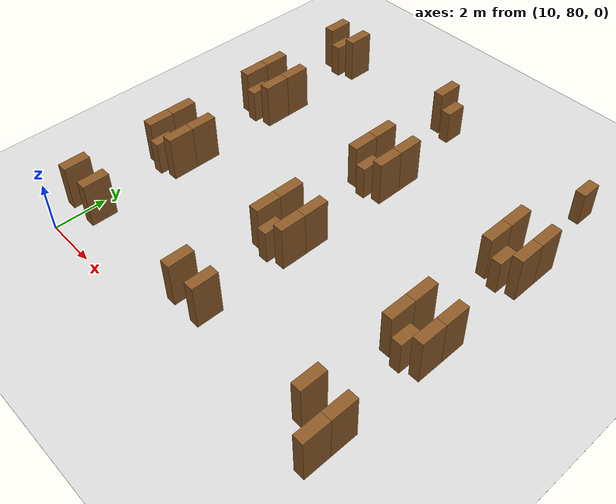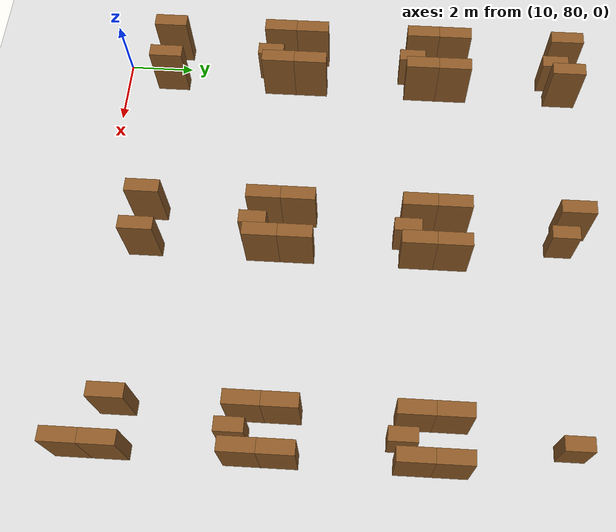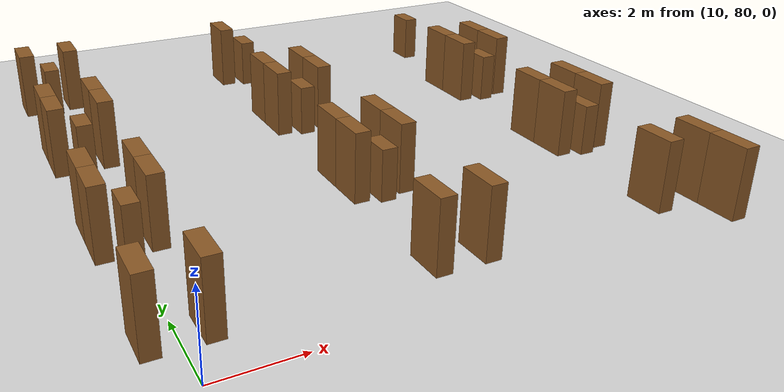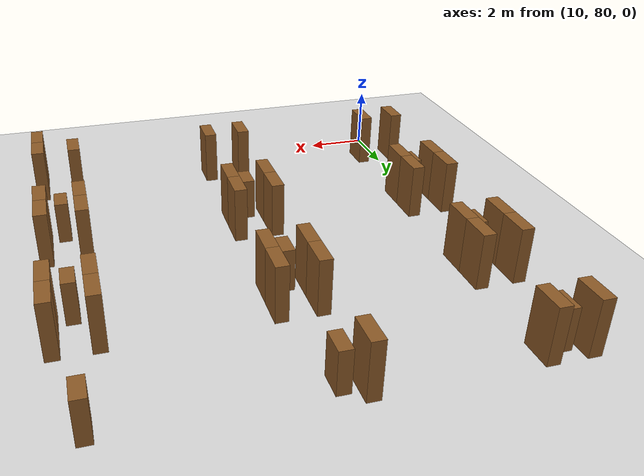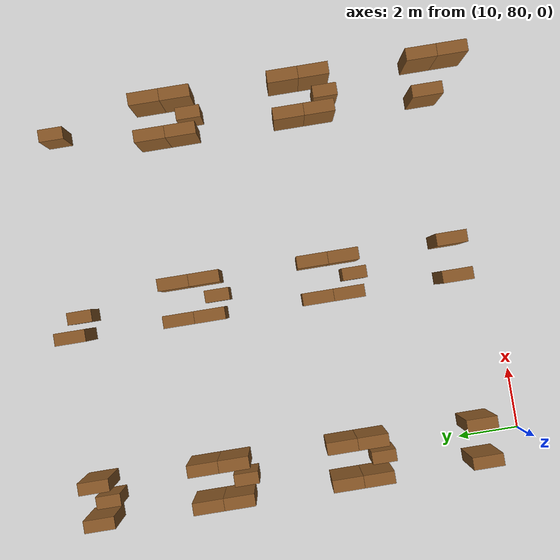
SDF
<sdf version="1.9">
 <world name="realistic_warehouse_150x200m">
  <model name="ground_plane">
   <static>true</static>
   <pose>68.5 102.0 0 0 0 0</pose>
   <link name="ground_link">
    <visual name="ground_visual">
     <geometry><box><size>127.0 194.0 0.01</size></box></geometry>
     <material><ambient>0.85 0.85 0.85 1.0</ambient><diffuse>0.85 0.85 0.85 1.0</diffuse></material>
    </visual>
    <collision name="ground_visual_collision">
     <geometry><box><size>127.0 194.0 0.01</size></box></geometry>
    </collision>
    <collision name="ground_collision">
     <geometry><plane><normal>0 0 1</normal><size>127.0 194.0</size></plane></geometry>
    </collision>
   </link>
  </model>
  <model name="rack_Zone_G_A0_S4_1019">
   <static>true</static>
   <pose>9.4 81.5 0.9 0 0 0</pose>
   <link name="rack_Zone_G_A0_S4_1019_link">
    <visual name="rack_Zone_G_A0_S4_1019_vis">
     <geometry><box><size>0.4 1.0 1.8</size></box></geometry>
     <material><ambient>0.55 0.35 0.15 1.0</ambient><diffuse>0.55 0.35 0.15 1.0</diffuse></material>
    </visual>
    <collision name="rack_Zone_G_A0_S4_1019_vis_collision">
     <geometry><box><size>0.4 1.0 1.8</size></box></geometry>
    </collision>
   </link>
  </model>
  <model name="rack_Zone_G_A0_S4_1021">
   <static>true</static>
   <pose>10.6 81.5 0.9 0 0 0</pose>
   <link name="rack_Zone_G_A0_S4_1021_link">
    <visual name="rack_Zone_G_A0_S4_1021_vis">
     <geometry><box><size>0.4 1.0 1.8</size></box></geometry>
     <material><ambient>0.55 0.35 0.15 1.0</ambient><diffuse>0.55 0.35 0.15 1.0</diffuse></material>
    </visual>
    <collision name="rack_Zone_G_A0_S4_1021_vis_collision">
     <geometry><box><size>0.4 1.0 1.8</size></box></geometry>
    </collision>
   </link>
  </model>
  <model name="rack_Zone_G_A0_S5_1023">
   <static>true</static>
   <pose>9.4 85.0 0.9 0 0 0</pose>
   <link name="rack_Zone_G_A0_S5_1023_link">
    <visual name="rack_Zone_G_A0_S5_1023_vis">
     <geometry><box><size>0.4 1.0 1.8</size></box></geometry>
     <material><ambient>0.55 0.35 0.15 1.0</ambient><diffuse>0.55 0.35 0.15 1.0</diffuse></material>
    </visual>
    <collision name="rack_Zone_G_A0_S5_1023_vis_collision">
     <geometry><box><size>0.4 1.0 1.8</size></box></geometry>
    </collision>
   </link>
  </model>
  <model name="rack_Zone_G_A0_S5_1024">
   <static>true</static>
   <pose>9.4 86.0 0.9 0 0 0</pose>
   <link name="rack_Zone_G_A0_S5_1024_link">
    <visual name="rack_Zone_G_A0_S5_1024_vis">
     <geometry><box><size>0.4 1.0 1.8</size></box></geometry>
     <material><ambient>0.55 0.35 0.15 1.0</ambient><diffuse>0.55 0.35 0.15 1.0</diffuse></material>
    </visual>
    <collision name="rack_Zone_G_A0_S5_1024_vis_collision">
     <geometry><box><size>0.4 1.0 1.8</size></box></geometry>
    </collision>
   </link>
  </model>
  <model name="rack_Zone_G_A0_S5_1025">
   <static>true</static>
   <pose>10.6 85.0 0.9 0 0 0</pose>
   <link name="rack_Zone_G_A0_S5_1025_link">
    <visual name="rack_Zone_G_A0_S5_1025_vis">
     <geometry><box><size>0.4 1.0 1.8</size></box></geometry>
     <material><ambient>0.55 0.35 0.15 1.0</ambient><diffuse>0.55 0.35 0.15 1.0</diffuse></material>
    </visual>
    <collision name="rack_Zone_G_A0_S5_1025_vis_collision">
     <geometry><box><size>0.4 1.0 1.8</size></box></geometry>
    </collision>
   </link>
  </model>
  <model name="rack_Zone_G_A0_S5_1026">
   <static>true</static>
   <pose>10.6 86.0 0.9 0 0 0</pose>
   <link name="rack_Zone_G_A0_S5_1026_link">
    <visual name="rack_Zone_G_A0_S5_1026_vis">
     <geometry><box><size>0.4 1.0 1.8</size></box></geometry>
     <material><ambient>0.55 0.35 0.15 1.0</ambient><diffuse>0.55 0.35 0.15 1.0</diffuse></material>
    </visual>
    <collision name="rack_Zone_G_A0_S5_1026_vis_collision">
     <geometry><box><size>0.4 1.0 1.8</size></box></geometry>
    </collision>
   </link>
  </model>
  <model name="rack_Zone_G_A0_S5_1027">
   <static>true</static>
   <pose>10.0 84.7 0.675 0 0 0</pose>
   <link name="rack_Zone_G_A0_S5_1027_link">
    <visual name="rack_Zone_G_A0_S5_1027_vis">
     <geometry><box><size>0.4 0.8 1.35</size></box></geometry>
     <material><ambient>0.55 0.35 0.15 1.0</ambient><diffuse>0.55 0.35 0.15 1.0</diffuse></material>
    </visual>
    <collision name="rack_Zone_G_A0_S5_1027_vis_collision">
     <geometry><box><size>0.4 0.8 1.35</size></box></geometry>
    </collision>
   </link>
  </model>
  <model name="rack_Zone_G_A0_S6_1028">
   <static>true</static>
   <pose>9.4 89.5 0.9 0 0 0</pose>
   <link name="rack_Zone_G_A0_S6_1028_link">
    <visual name="rack_Zone_G_A0_S6_1028_vis">
     <geometry><box><size>0.4 1.0 1.8</size></box></geometry>
     <material><ambient>0.55 0.35 0.15 1.0</ambient><diffuse>0.55 0.35 0.15 1.0</diffuse></material>
    </visual>
    <collision name="rack_Zone_G_A0_S6_1028_vis_collision">
     <geometry><box><size>0.4 1.0 1.8</size></box></geometry>
    </collision>
   </link>
  </model>
  <model name="rack_Zone_G_A0_S6_1029">
   <static>true</static>
   <pose>9.4 90.5 0.9 0 0 0</pose>
   <link name="rack_Zone_G_A0_S6_1029_link">
    <visual name="rack_Zone_G_A0_S6_1029_vis">
     <geometry><box><size>0.4 1.0 1.8</size></box></geometry>
     <material><ambient>0.55 0.35 0.15 1.0</ambient><diffuse>0.55 0.35 0.15 1.0</diffuse></material>
    </visual>
    <collision name="rack_Zone_G_A0_S6_1029_vis_collision">
     <geometry><box><size>0.4 1.0 1.8</size></box></geometry>
    </collision>
   </link>
  </model>
  <model name="rack_Zone_G_A0_S6_1030">
   <static>true</static>
   <pose>10.6 89.5 0.9 0 0 0</pose>
   <link name="rack_Zone_G_A0_S6_1030_link">
    <visual name="rack_Zone_G_A0_S6_1030_vis">
     <geometry><box><size>0.4 1.0 1.8</size></box></geometry>
     <material><ambient>0.55 0.35 0.15 1.0</ambient><diffuse>0.55 0.35 0.15 1.0</diffuse></material>
    </visual>
    <collision name="rack_Zone_G_A0_S6_1030_vis_collision">
     <geometry><box><size>0.4 1.0 1.8</size></box></geometry>
    </collision>
   </link>
  </model>
  <model name="rack_Zone_G_A0_S6_1031">
   <static>true</static>
   <pose>10.6 90.5 0.9 0 0 0</pose>
   <link name="rack_Zone_G_A0_S6_1031_link">
    <visual name="rack_Zone_G_A0_S6_1031_vis">
     <geometry><box><size>0.4 1.0 1.8</size></box></geometry>
     <material><ambient>0.55 0.35 0.15 1.0</ambient><diffuse>0.55 0.35 0.15 1.0</diffuse></material>
    </visual>
    <collision name="rack_Zone_G_A0_S6_1031_vis_collision">
     <geometry><box><size>0.4 1.0 1.8</size></box></geometry>
    </collision>
   </link>
  </model>
  <model name="rack_Zone_G_A0_S6_1032">
   <static>true</static>
   <pose>10.0 89.2 0.675 0 0 0</pose>
   <link name="rack_Zone_G_A0_S6_1032_link">
    <visual name="rack_Zone_G_A0_S6_1032_vis">
     <geometry><box><size>0.4 0.8 1.35</size></box></geometry>
     <material><ambient>0.55 0.35 0.15 1.0</ambient><diffuse>0.55 0.35 0.15 1.0</diffuse></material>
    </visual>
    <collision name="rack_Zone_G_A0_S6_1032_vis_collision">
     <geometry><box><size>0.4 0.8 1.35</size></box></geometry>
    </collision>
   </link>
  </model>
  <model name="rack_Zone_G_A0_S7_1033">
   <static>true</static>
   <pose>9.4 94.0 0.9 0 0 0</pose>
   <link name="rack_Zone_G_A0_S7_1033_link">
    <visual name="rack_Zone_G_A0_S7_1033_vis">
     <geometry><box><size>0.4 1.0 1.8</size></box></geometry>
     <material><ambient>0.55 0.35 0.15 1.0</ambient><diffuse>0.55 0.35 0.15 1.0</diffuse></material>
    </visual>
    <collision name="rack_Zone_G_A0_S7_1033_vis_collision">
     <geometry><box><size>0.4 1.0 1.8</size></box></geometry>
    </collision>
   </link>
  </model>
  <model name="rack_Zone_G_A0_S7_1035">
   <static>true</static>
   <pose>10.6 94.0 0.9 0 0 0</pose>
   <link name="rack_Zone_G_A0_S7_1035_link">
    <visual name="rack_Zone_G_A0_S7_1035_vis">
     <geometry><box><size>0.4 1.0 1.8</size></box></geometry>
     <material><ambient>0.55 0.35 0.15 1.0</ambient><diffuse>0.55 0.35 0.15 1.0</diffuse></material>
    </visual>
    <collision name="rack_Zone_G_A0_S7_1035_vis_collision">
     <geometry><box><size>0.4 1.0 1.8</size></box></geometry>
    </collision>
   </link>
  </model>
  <model name="rack_Zone_G_A0_S7_1037">
   <static>true</static>
   <pose>10.0 93.7 0.675 0 0 0</pose>
   <link name="rack_Zone_G_A0_S7_1037_link">
    <visual name="rack_Zone_G_A0_S7_1037_vis">
     <geometry><box><size>0.4 0.8 1.35</size></box></geometry>
     <material><ambient>0.55 0.35 0.15 1.0</ambient><diffuse>0.55 0.35 0.15 1.0</diffuse></material>
    </visual>
    <collision name="rack_Zone_G_A0_S7_1037_vis_collision">
     <geometry><box><size>0.4 0.8 1.35</size></box></geometry>
    </collision>
   </link>
  </model>
  <model name="rack_Zone_G_A1_S4_1063">
   <static>true</static>
   <pose>15.4 81.5 0.9 0 0 0</pose>
   <link name="rack_Zone_G_A1_S4_1063_link">
    <visual name="rack_Zone_G_A1_S4_1063_vis">
     <geometry><box><size>0.4 1.0 1.8</size></box></geometry>
     <material><ambient>0.55 0.35 0.15 1.0</ambient><diffuse>0.55 0.35 0.15 1.0</diffuse></material>
    </visual>
    <collision name="rack_Zone_G_A1_S4_1063_vis_collision">
     <geometry><box><size>0.4 1.0 1.8</size></box></geometry>
    </collision>
   </link>
  </model>
  <model name="rack_Zone_G_A1_S4_1065">
   <static>true</static>
   <pose>16.6 81.5 0.9 0 0 0</pose>
   <link name="rack_Zone_G_A1_S4_1065_link">
    <visual name="rack_Zone_G_A1_S4_1065_vis">
     <geometry><box><size>0.4 1.0 1.8</size></box></geometry>
     <material><ambient>0.55 0.35 0.15 1.0</ambient><diffuse>0.55 0.35 0.15 1.0</diffuse></material>
    </visual>
    <collision name="rack_Zone_G_A1_S4_1065_vis_collision">
     <geometry><box><size>0.4 1.0 1.8</size></box></geometry>
    </collision>
   </link>
  </model>
  <model name="rack_Zone_G_A1_S5_1067">
   <static>true</static>
   <pose>15.4 85.0 0.9 0 0 0</pose>
   <link name="rack_Zone_G_A1_S5_1067_link">
    <visual name="rack_Zone_G_A1_S5_1067_vis">
     <geometry><box><size>0.4 1.0 1.8</size></box></geometry>
     <material><ambient>0.55 0.35 0.15 1.0</ambient><diffuse>0.55 0.35 0.15 1.0</diffuse></material>
    </visual>
    <collision name="rack_Zone_G_A1_S5_1067_vis_collision">
     <geometry><box><size>0.4 1.0 1.8</size></box></geometry>
    </collision>
   </link>
  </model>
  <model name="rack_Zone_G_A1_S5_1068">
   <static>true</static>
   <pose>15.4 86.0 0.9 0 0 0</pose>
   <link name="rack_Zone_G_A1_S5_1068_link">
    <visual name="rack_Zone_G_A1_S5_1068_vis">
     <geometry><box><size>0.4 1.0 1.8</size></box></geometry>
     <material><ambient>0.55 0.35 0.15 1.0</ambient><diffuse>0.55 0.35 0.15 1.0</diffuse></material>
    </visual>
    <collision name="rack_Zone_G_A1_S5_1068_vis_collision">
     <geometry><box><size>0.4 1.0 1.8</size></box></geometry>
    </collision>
   </link>
  </model>
  <model name="rack_Zone_G_A1_S5_1069">
   <static>true</static>
   <pose>16.6 85.0 0.9 0 0 0</pose>
   <link name="rack_Zone_G_A1_S5_1069_link">
    <visual name="rack_Zone_G_A1_S5_1069_vis">
     <geometry><box><size>0.4 1.0 1.8</size></box></geometry>
     <material><ambient>0.55 0.35 0.15 1.0</ambient><diffuse>0.55 0.35 0.15 1.0</diffuse></material>
    </visual>
    <collision name="rack_Zone_G_A1_S5_1069_vis_collision">
     <geometry><box><size>0.4 1.0 1.8</size></box></geometry>
    </collision>
   </link>
  </model>
  <model name="rack_Zone_G_A1_S5_1070">
   <static>true</static>
   <pose>16.6 86.0 0.9 0 0 0</pose>
   <link name="rack_Zone_G_A1_S5_1070_link">
    <visual name="rack_Zone_G_A1_S5_1070_vis">
     <geometry><box><size>0.4 1.0 1.8</size></box></geometry>
     <material><ambient>0.55 0.35 0.15 1.0</ambient><diffuse>0.55 0.35 0.15 1.0</diffuse></material>
    </visual>
    <collision name="rack_Zone_G_A1_S5_1070_vis_collision">
     <geometry><box><size>0.4 1.0 1.8</size></box></geometry>
    </collision>
   </link>
  </model>
  <model name="rack_Zone_G_A1_S5_1071">
   <static>true</static>
   <pose>16.0 84.7 0.675 0 0 0</pose>
   <link name="rack_Zone_G_A1_S5_1071_link">
    <visual name="rack_Zone_G_A1_S5_1071_vis">
     <geometry><box><size>0.4 0.8 1.35</size></box></geometry>
     <material><ambient>0.55 0.35 0.15 1.0</ambient><diffuse>0.55 0.35 0.15 1.0</diffuse></material>
    </visual>
    <collision name="rack_Zone_G_A1_S5_1071_vis_collision">
     <geometry><box><size>0.4 0.8 1.35</size></box></geometry>
    </collision>
   </link>
  </model>
  <model name="rack_Zone_G_A1_S6_1072">
   <static>true</static>
   <pose>15.4 89.5 0.9 0 0 0</pose>
   <link name="rack_Zone_G_A1_S6_1072_link">
    <visual name="rack_Zone_G_A1_S6_1072_vis">
     <geometry><box><size>0.4 1.0 1.8</size></box></geometry>
     <material><ambient>0.55 0.35 0.15 1.0</ambient><diffuse>0.55 0.35 0.15 1.0</diffuse></material>
    </visual>
    <collision name="rack_Zone_G_A1_S6_1072_vis_collision">
     <geometry><box><size>0.4 1.0 1.8</size></box></geometry>
    </collision>
   </link>
  </model>
  <model name="rack_Zone_G_A1_S6_1073">
   <static>true</static>
   <pose>15.4 90.5 0.9 0 0 0</pose>
   <link name="rack_Zone_G_A1_S6_1073_link">
    <visual name="rack_Zone_G_A1_S6_1073_vis">
     <geometry><box><size>0.4 1.0 1.8</size></box></geometry>
     <material><ambient>0.55 0.35 0.15 1.0</ambient><diffuse>0.55 0.35 0.15 1.0</diffuse></material>
    </visual>
    <collision name="rack_Zone_G_A1_S6_1073_vis_collision">
     <geometry><box><size>0.4 1.0 1.8</size></box></geometry>
    </collision>
   </link>
  </model>
  <model name="rack_Zone_G_A1_S6_1074">
   <static>true</static>
   <pose>16.6 89.5 0.9 0 0 0</pose>
   <link name="rack_Zone_G_A1_S6_1074_link">
    <visual name="rack_Zone_G_A1_S6_1074_vis">
     <geometry><box><size>0.4 1.0 1.8</size></box></geometry>
     <material><ambient>0.55 0.35 0.15 1.0</ambient><diffuse>0.55 0.35 0.15 1.0</diffuse></material>
    </visual>
    <collision name="rack_Zone_G_A1_S6_1074_vis_collision">
     <geometry><box><size>0.4 1.0 1.8</size></box></geometry>
    </collision>
   </link>
  </model>
  <model name="rack_Zone_G_A1_S6_1075">
   <static>true</static>
   <pose>16.6 90.5 0.9 0 0 0</pose>
   <link name="rack_Zone_G_A1_S6_1075_link">
    <visual name="rack_Zone_G_A1_S6_1075_vis">
     <geometry><box><size>0.4 1.0 1.8</size></box></geometry>
     <material><ambient>0.55 0.35 0.15 1.0</ambient><diffuse>0.55 0.35 0.15 1.0</diffuse></material>
    </visual>
    <collision name="rack_Zone_G_A1_S6_1075_vis_collision">
     <geometry><box><size>0.4 1.0 1.8</size></box></geometry>
    </collision>
   </link>
  </model>
  <model name="rack_Zone_G_A1_S6_1076">
   <static>true</static>
   <pose>16.0 89.2 0.675 0 0 0</pose>
   <link name="rack_Zone_G_A1_S6_1076_link">
    <visual name="rack_Zone_G_A1_S6_1076_vis">
     <geometry><box><size>0.4 0.8 1.35</size></box></geometry>
     <material><ambient>0.55 0.35 0.15 1.0</ambient><diffuse>0.55 0.35 0.15 1.0</diffuse></material>
    </visual>
    <collision name="rack_Zone_G_A1_S6_1076_vis_collision">
     <geometry><box><size>0.4 0.8 1.35</size></box></geometry>
    </collision>
   </link>
  </model>
  <model name="rack_Zone_G_A1_S7_1077">
   <static>true</static>
   <pose>15.4 94.0 0.9 0 0 0</pose>
   <link name="rack_Zone_G_A1_S7_1077_link">
    <visual name="rack_Zone_G_A1_S7_1077_vis">
     <geometry><box><size>0.4 1.0 1.8</size></box></geometry>
     <material><ambient>0.55 0.35 0.15 1.0</ambient><diffuse>0.55 0.35 0.15 1.0</diffuse></material>
    </visual>
    <collision name="rack_Zone_G_A1_S7_1077_vis_collision">
     <geometry><box><size>0.4 1.0 1.8</size></box></geometry>
    </collision>
   </link>
  </model>
  <model name="rack_Zone_G_A1_S7_1081">
   <static>true</static>
   <pose>16.0 93.7 0.675 0 0 0</pose>
   <link name="rack_Zone_G_A1_S7_1081_link">
    <visual name="rack_Zone_G_A1_S7_1081_vis">
     <geometry><box><size>0.4 0.8 1.35</size></box></geometry>
     <material><ambient>0.55 0.35 0.15 1.0</ambient><diffuse>0.55 0.35 0.15 1.0</diffuse></material>
    </visual>
    <collision name="rack_Zone_G_A1_S7_1081_vis_collision">
     <geometry><box><size>0.4 0.8 1.35</size></box></geometry>
    </collision>
   </link>
  </model>
  <model name="rack_Zone_G_A2_S4_1107">
   <static>true</static>
   <pose>21.4 81.5 0.9 0 0 0</pose>
   <link name="rack_Zone_G_A2_S4_1107_link">
    <visual name="rack_Zone_G_A2_S4_1107_vis">
     <geometry><box><size>0.4 1.0 1.8</size></box></geometry>
     <material><ambient>0.55 0.35 0.15 1.0</ambient><diffuse>0.55 0.35 0.15 1.0</diffuse></material>
    </visual>
    <collision name="rack_Zone_G_A2_S4_1107_vis_collision">
     <geometry><box><size>0.4 1.0 1.8</size></box></geometry>
    </collision>
   </link>
  </model>
  <model name="rack_Zone_G_A2_S4_1108">
   <static>true</static>
   <pose>22.6 80.5 0.9 0 0 0</pose>
   <link name="rack_Zone_G_A2_S4_1108_link">
    <visual name="rack_Zone_G_A2_S4_1108_vis">
     <geometry><box><size>0.4 1.0 1.8</size></box></geometry>
     <material><ambient>0.55 0.35 0.15 1.0</ambient><diffuse>0.55 0.35 0.15 1.0</diffuse></material>
    </visual>
    <collision name="rack_Zone_G_A2_S4_1108_vis_collision">
     <geometry><box><size>0.4 1.0 1.8</size></box></geometry>
    </collision>
   </link>
  </model>
  <model name="rack_Zone_G_A2_S4_1109">
   <static>true</static>
   <pose>22.6 81.5 0.9 0 0 0</pose>
   <link name="rack_Zone_G_A2_S4_1109_link">
    <visual name="rack_Zone_G_A2_S4_1109_vis">
     <geometry><box><size>0.4 1.0 1.8</size></box></geometry>
     <material><ambient>0.55 0.35 0.15 1.0</ambient><diffuse>0.55 0.35 0.15 1.0</diffuse></material>
    </visual>
    <collision name="rack_Zone_G_A2_S4_1109_vis_collision">
     <geometry><box><size>0.4 1.0 1.8</size></box></geometry>
    </collision>
   </link>
  </model>
  <model name="rack_Zone_G_A2_S5_1111">
   <static>true</static>
   <pose>21.4 85.0 0.9 0 0 0</pose>
   <link name="rack_Zone_G_A2_S5_1111_link">
    <visual name="rack_Zone_G_A2_S5_1111_vis">
     <geometry><box><size>0.4 1.0 1.8</size></box></geometry>
     <material><ambient>0.55 0.35 0.15 1.0</ambient><diffuse>0.55 0.35 0.15 1.0</diffuse></material>
    </visual>
    <collision name="rack_Zone_G_A2_S5_1111_vis_collision">
     <geometry><box><size>0.4 1.0 1.8</size></box></geometry>
    </collision>
   </link>
  </model>
  <model name="rack_Zone_G_A2_S5_1112">
   <static>true</static>
   <pose>21.4 86.0 0.9 0 0 0</pose>
   <link name="rack_Zone_G_A2_S5_1112_link">
    <visual name="rack_Zone_G_A2_S5_1112_vis">
     <geometry><box><size>0.4 1.0 1.8</size></box></geometry>
     <material><ambient>0.55 0.35 0.15 1.0</ambient><diffuse>0.55 0.35 0.15 1.0</diffuse></material>
    </visual>
    <collision name="rack_Zone_G_A2_S5_1112_vis_collision">
     <geometry><box><size>0.4 1.0 1.8</size></box></geometry>
    </collision>
   </link>
  </model>
  <model name="rack_Zone_G_A2_S5_1113">
   <static>true</static>
   <pose>22.6 85.0 0.9 0 0 0</pose>
   <link name="rack_Zone_G_A2_S5_1113_link">
    <visual name="rack_Zone_G_A2_S5_1113_vis">
     <geometry><box><size>0.4 1.0 1.8</size></box></geometry>
     <material><ambient>0.55 0.35 0.15 1.0</ambient><diffuse>0.55 0.35 0.15 1.0</diffuse></material>
    </visual>
    <collision name="rack_Zone_G_A2_S5_1113_vis_collision">
     <geometry><box><size>0.4 1.0 1.8</size></box></geometry>
    </collision>
   </link>
  </model>
  <model name="rack_Zone_G_A2_S5_1114">
   <static>true</static>
   <pose>22.6 86.0 0.9 0 0 0</pose>
   <link name="rack_Zone_G_A2_S5_1114_link">
    <visual name="rack_Zone_G_A2_S5_1114_vis">
     <geometry><box><size>0.4 1.0 1.8</size></box></geometry>
     <material><ambient>0.55 0.35 0.15 1.0</ambient><diffuse>0.55 0.35 0.15 1.0</diffuse></material>
    </visual>
    <collision name="rack_Zone_G_A2_S5_1114_vis_collision">
     <geometry><box><size>0.4 1.0 1.8</size></box></geometry>
    </collision>
   </link>
  </model>
  <model name="rack_Zone_G_A2_S5_1115">
   <static>true</static>
   <pose>22.0 84.7 0.675 0 0 0</pose>
   <link name="rack_Zone_G_A2_S5_1115_link">
    <visual name="rack_Zone_G_A2_S5_1115_vis">
     <geometry><box><size>0.4 0.8 1.35</size></box></geometry>
     <material><ambient>0.55 0.35 0.15 1.0</ambient><diffuse>0.55 0.35 0.15 1.0</diffuse></material>
    </visual>
    <collision name="rack_Zone_G_A2_S5_1115_vis_collision">
     <geometry><box><size>0.4 0.8 1.35</size></box></geometry>
    </collision>
   </link>
  </model>
  <model name="rack_Zone_G_A2_S6_1116">
   <static>true</static>
   <pose>21.4 89.5 0.9 0 0 0</pose>
   <link name="rack_Zone_G_A2_S6_1116_link">
    <visual name="rack_Zone_G_A2_S6_1116_vis">
     <geometry><box><size>0.4 1.0 1.8</size></box></geometry>
     <material><ambient>0.55 0.35 0.15 1.0</ambient><diffuse>0.55 0.35 0.15 1.0</diffuse></material>
    </visual>
    <collision name="rack_Zone_G_A2_S6_1116_vis_collision">
     <geometry><box><size>0.4 1.0 1.8</size></box></geometry>
    </collision>
   </link>
  </model>
  <model name="rack_Zone_G_A2_S6_1117">
   <static>true</static>
   <pose>21.4 90.5 0.9 0 0 0</pose>
   <link name="rack_Zone_G_A2_S6_1117_link">
    <visual name="rack_Zone_G_A2_S6_1117_vis">
     <geometry><box><size>0.4 1.0 1.8</size></box></geometry>
     <material><ambient>0.55 0.35 0.15 1.0</ambient><diffuse>0.55 0.35 0.15 1.0</diffuse></material>
    </visual>
    <collision name="rack_Zone_G_A2_S6_1117_vis_collision">
     <geometry><box><size>0.4 1.0 1.8</size></box></geometry>
    </collision>
   </link>
  </model>
  <model name="rack_Zone_G_A2_S6_1118">
   <static>true</static>
   <pose>22.6 89.5 0.9 0 0 0</pose>
   <link name="rack_Zone_G_A2_S6_1118_link">
    <visual name="rack_Zone_G_A2_S6_1118_vis">
     <geometry><box><size>0.4 1.0 1.8</size></box></geometry>
     <material><ambient>0.55 0.35 0.15 1.0</ambient><diffuse>0.55 0.35 0.15 1.0</diffuse></material>
    </visual>
    <collision name="rack_Zone_G_A2_S6_1118_vis_collision">
     <geometry><box><size>0.4 1.0 1.8</size></box></geometry>
    </collision>
   </link>
  </model>
  <model name="rack_Zone_G_A2_S6_1119">
   <static>true</static>
   <pose>22.6 90.5 0.9 0 0 0</pose>
   <link name="rack_Zone_G_A2_S6_1119_link">
    <visual name="rack_Zone_G_A2_S6_1119_vis">
     <geometry><box><size>0.4 1.0 1.8</size></box></geometry>
     <material><ambient>0.55 0.35 0.15 1.0</ambient><diffuse>0.55 0.35 0.15 1.0</diffuse></material>
    </visual>
    <collision name="rack_Zone_G_A2_S6_1119_vis_collision">
     <geometry><box><size>0.4 1.0 1.8</size></box></geometry>
    </collision>
   </link>
  </model>
  <model name="rack_Zone_G_A2_S6_1120">
   <static>true</static>
   <pose>22.0 89.2 0.675 0 0 0</pose>
   <link name="rack_Zone_G_A2_S6_1120_link">
    <visual name="rack_Zone_G_A2_S6_1120_vis">
     <geometry><box><size>0.4 0.8 1.35</size></box></geometry>
     <material><ambient>0.55 0.35 0.15 1.0</ambient><diffuse>0.55 0.35 0.15 1.0</diffuse></material>
    </visual>
    <collision name="rack_Zone_G_A2_S6_1120_vis_collision">
     <geometry><box><size>0.4 0.8 1.35</size></box></geometry>
    </collision>
   </link>
  </model>
  <model name="rack_Zone_G_A2_S7_1125">
   <static>true</static>
   <pose>22.0 93.7 0.675 0 0 0</pose>
   <link name="rack_Zone_G_A2_S7_1125_link">
    <visual name="rack_Zone_G_A2_S7_1125_vis">
     <geometry><box><size>0.4 0.8 1.35</size></box></geometry>
     <material><ambient>0.55 0.35 0.15 1.0</ambient><diffuse>0.55 0.35 0.15 1.0</diffuse></material>
    </visual>
    <collision name="rack_Zone_G_A2_S7_1125_vis_collision">
     <geometry><box><size>0.4 0.8 1.35</size></box></geometry>
    </collision>
   </link>
  </model>
 </world>
</sdf>
